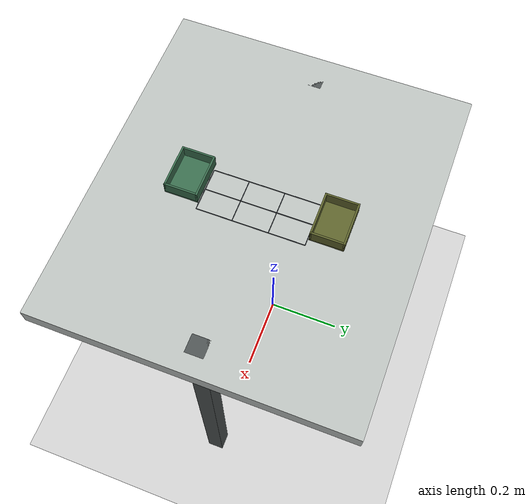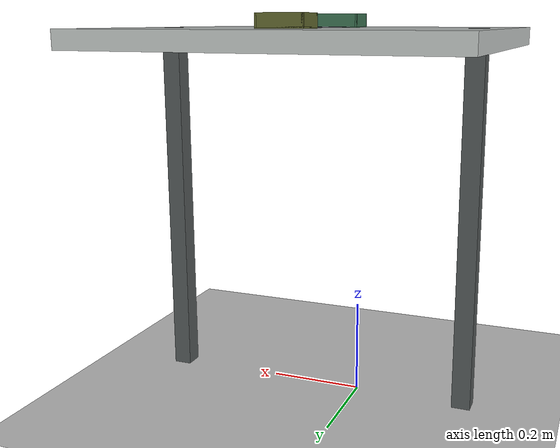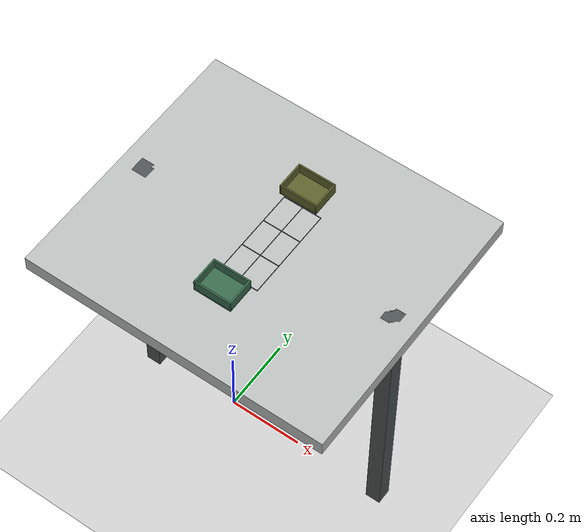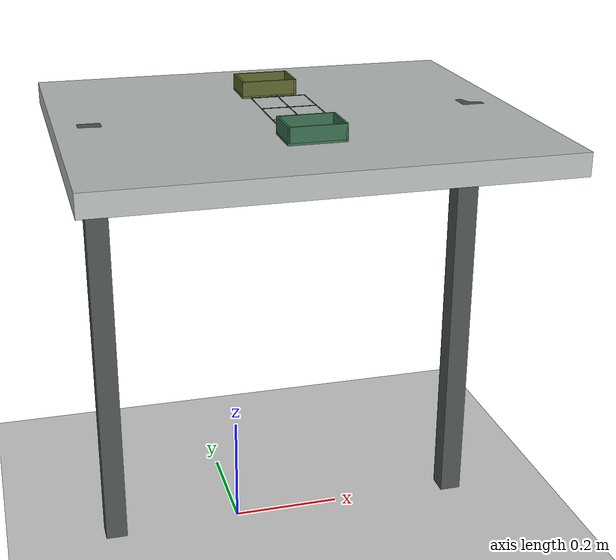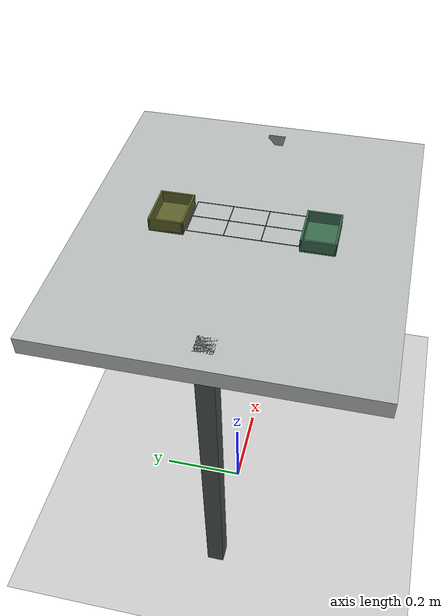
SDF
<?xml version="1.0"?>
<!-- L1 scene. Object motion during grasp is handled by an explicitly disclosed ROS service follower. -->
<sdf version="1.6">
  <world name="default">
    <physics type="ode">
      <max_step_size>0.001</max_step_size>
      <real_time_factor>1</real_time_factor>
      <real_time_update_rate>1000</real_time_update_rate>
      <ode><solver><type>world</type><iters>50</iters></solver></ode>
    </physics>
    <plugin name="gazebo_ros_state" filename="libgazebo_ros_state.so">
      <ros><namespace>/gazebo</namespace></ros>
      <update_rate>10.0</update_rate>
    </plugin>
    <include><uri>model://ground_plane</uri></include>
    <include><uri>model://sun</uri></include>

    <model name="exp3_table">
      <static>true</static>
      <link name="top">
        <collision name="top_collision">
          <pose>0.10 0 0.78 0 0 0</pose>
          <geometry><box><size>0.80 0.70 0.04</size></box></geometry>
        </collision>
        <visual name="top_visual">
          <pose>0.10 0 0.78 0 0 0</pose>
          <geometry><box><size>0.80 0.70 0.04</size></box></geometry>
          <material><ambient>0.72 0.74 0.73 1</ambient><diffuse>0.72 0.74 0.73 1</diffuse></material>
        </visual>
        <collision name="leg_left"><pose>-0.24 0 0.40 0 0 0</pose><geometry><box><size>0.04 0.04 0.80</size></box></geometry></collision>
        <collision name="leg_right"><pose>0.44 0 0.40 0 0 0</pose><geometry><box><size>0.04 0.04 0.80</size></box></geometry></collision>
        <visual name="leg_left_visual"><pose>-0.24 0 0.40 0 0 0</pose><geometry><box><size>0.04 0.04 0.80</size></box></geometry><material><ambient>0.30 0.32 0.32 1</ambient><diffuse>0.30 0.32 0.32 1</diffuse></material></visual>
        <visual name="leg_right_visual"><pose>0.44 0 0.40 0 0 0</pose><geometry><box><size>0.04 0.04 0.80</size></box></geometry><material><ambient>0.30 0.32 0.32 1</ambient><diffuse>0.30 0.32 0.32 1</diffuse></material></visual>
      </link>
    </model>

    <model name="grid_lines">
      <static>true</static>
      <link name="lines">
        <visual name="x0"><pose>0.065 0 0.801 0 0 0</pose><geometry><box><size>0.0015 0.24 0.0008</size></box></geometry><material><ambient>0.10 0.12 0.14 1</ambient><diffuse>0.10 0.12 0.14 1</diffuse></material></visual>
        <visual name="x1"><pose>0.115 0 0.801 0 0 0</pose><geometry><box><size>0.0015 0.24 0.0008</size></box></geometry><material><ambient>0.10 0.12 0.14 1</ambient><diffuse>0.10 0.12 0.14 1</diffuse></material></visual>
        <visual name="x2"><pose>0.165 0 0.801 0 0 0</pose><geometry><box><size>0.0015 0.24 0.0008</size></box></geometry><material><ambient>0.10 0.12 0.14 1</ambient><diffuse>0.10 0.12 0.14 1</diffuse></material></visual>
        <visual name="y0"><pose>0.115 -0.12 0.801 0 0 0</pose><geometry><box><size>0.10 0.0015 0.0008</size></box></geometry><material><ambient>0.10 0.12 0.14 1</ambient><diffuse>0.10 0.12 0.14 1</diffuse></material></visual>
        <visual name="y1"><pose>0.115 -0.04 0.801 0 0 0</pose><geometry><box><size>0.10 0.0015 0.0008</size></box></geometry><material><ambient>0.10 0.12 0.14 1</ambient><diffuse>0.10 0.12 0.14 1</diffuse></material></visual>
        <visual name="y2"><pose>0.115 0.04 0.801 0 0 0</pose><geometry><box><size>0.10 0.0015 0.0008</size></box></geometry><material><ambient>0.10 0.12 0.14 1</ambient><diffuse>0.10 0.12 0.14 1</diffuse></material></visual>
        <visual name="y3"><pose>0.115 0.12 0.801 0 0 0</pose><geometry><box><size>0.10 0.0015 0.0008</size></box></geometry><material><ambient>0.10 0.12 0.14 1</ambient><diffuse>0.10 0.12 0.14 1</diffuse></material></visual>
      </link>
    </model>

    <model name="bin_cup">
      <static>true</static><pose>0.10 -0.16 0.80 0 0 0</pose>
      <link name="tray">
        <collision name="base_collision"><pose>0 0 0.002 0 0 0</pose><geometry><box><size>0.10 0.075 0.004</size></box></geometry></collision>
        <visual name="base"><pose>0 0 0.002 0 0 0</pose><geometry><box><size>0.10 0.075 0.004</size></box></geometry><material><ambient>0.22 0.42 0.30 1</ambient><diffuse>0.22 0.42 0.30 1</diffuse></material></visual>
        <collision name="wall_x1"><pose>-0.048 0 0.016 0 0 0</pose><geometry><box><size>0.004 0.075 0.028</size></box></geometry></collision>
        <collision name="wall_x2"><pose>0.048 0 0.016 0 0 0</pose><geometry><box><size>0.004 0.075 0.028</size></box></geometry></collision>
        <collision name="wall_y1"><pose>0  -0.0355 0.016 0 0 0</pose><geometry><box><size>0.10 0.004 0.028</size></box></geometry></collision>
        <collision name="wall_y2"><pose>0 0.0355 0.016 0 0 0</pose><geometry><box><size>0.10 0.004 0.028</size></box></geometry></collision>
        <visual name="wall_x1v"><pose>-0.048 0 0.016 0 0 0</pose><geometry><box><size>0.004 0.075 0.028</size></box></geometry><material><ambient>0.22 0.42 0.30 1</ambient><diffuse>0.22 0.42 0.30 1</diffuse></material></visual>
        <visual name="wall_x2v"><pose>0.048 0 0.016 0 0 0</pose><geometry><box><size>0.004 0.075 0.028</size></box></geometry><material><ambient>0.22 0.42 0.30 1</ambient><diffuse>0.22 0.42 0.30 1</diffuse></material></visual>
        <visual name="wall_y1v"><pose>0 -0.0355 0.016 0 0 0</pose><geometry><box><size>0.10 0.004 0.028</size></box></geometry><material><ambient>0.22 0.42 0.30 1</ambient><diffuse>0.22 0.42 0.30 1</diffuse></material></visual>
        <visual name="wall_y2v"><pose>0 0.0355 0.016 0 0 0</pose><geometry><box><size>0.10 0.004 0.028</size></box></geometry><material><ambient>0.22 0.42 0.30 1</ambient><diffuse>0.22 0.42 0.30 1</diffuse></material></visual>
      </link>
    </model>
    <model name="bin_mouse">
      <static>true</static><pose>0.10 0.16 0.80 0 0 0</pose>
      <link name="tray">
        <collision name="base_collision"><pose>0 0 0.002 0 0 0</pose><geometry><box><size>0.10 0.075 0.004</size></box></geometry></collision>
        <visual name="base"><pose>0 0 0.002 0 0 0</pose><geometry><box><size>0.10 0.075 0.004</size></box></geometry><material><ambient>0.36 0.38 0.17 1</ambient><diffuse>0.36 0.38 0.17 1</diffuse></material></visual>
        <collision name="wall_x1"><pose>-0.048 0 0.016 0 0 0</pose><geometry><box><size>0.004 0.075 0.028</size></box></geometry></collision>
        <collision name="wall_x2"><pose>0.048 0 0.016 0 0 0</pose><geometry><box><size>0.004 0.075 0.028</size></box></geometry></collision>
        <collision name="wall_y1"><pose>0 -0.0355 0.016 0 0 0</pose><geometry><box><size>0.10 0.004 0.028</size></box></geometry></collision>
        <collision name="wall_y2"><pose>0 0.0355 0.016 0 0 0</pose><geometry><box><size>0.10 0.004 0.028</size></box></geometry></collision>
        <visual name="wall_x1v"><pose>-0.048 0 0.016 0 0 0</pose><geometry><box><size>0.004 0.075 0.028</size></box></geometry><material><ambient>0.36 0.38 0.17 1</ambient><diffuse>0.36 0.38 0.17 1</diffuse></material></visual>
        <visual name="wall_x2v"><pose>0.048 0 0.016 0 0 0</pose><geometry><box><size>0.004 0.075 0.028</size></box></geometry><material><ambient>0.36 0.38 0.17 1</ambient><diffuse>0.36 0.38 0.17 1</diffuse></material></visual>
        <visual name="wall_y1v"><pose>0 -0.0355 0.016 0 0 0</pose><geometry><box><size>0.10 0.004 0.028</size></box></geometry><material><ambient>0.36 0.38 0.17 1</ambient><diffuse>0.36 0.38 0.17 1</diffuse></material></visual>
        <visual name="wall_y2v"><pose>0 0.0355 0.016 0 0 0</pose><geometry><box><size>0.10 0.004 0.028</size></box></geometry><material><ambient>0.36 0.38 0.17 1</ambient><diffuse>0.36 0.38 0.17 1</diffuse></material></visual>
      </link>
    </model>

    <model name="overhead_camera">
      <static>true</static>
      <link name="camera_link">
        <pose>0.10 0 1.30 0 1.57079632679 -1.57079632679</pose>
        <sensor name="camera" type="camera">
          <always_on>true</always_on><update_rate>10</update_rate><visualize>false</visualize>
          <camera><horizontal_fov>1.0471975512</horizontal_fov><image><width>640</width><height>480</height><format>R8G8B8</format></image><clip><near>0.03</near><far>4.0</far></clip></camera>
          <plugin name="camera_controller" filename="libgazebo_ros_camera.so">
            <ros><namespace>/</namespace></ros>
            <camera_name>overhead</camera_name>
            <frame_name>overhead_camera_link</frame_name>
          </plugin>
        </sensor>
      </link>
    </model>
  </world>
</sdf>
